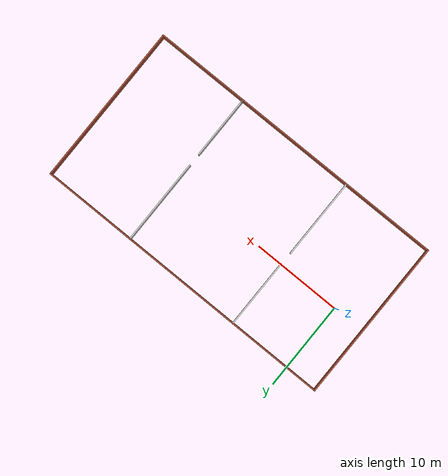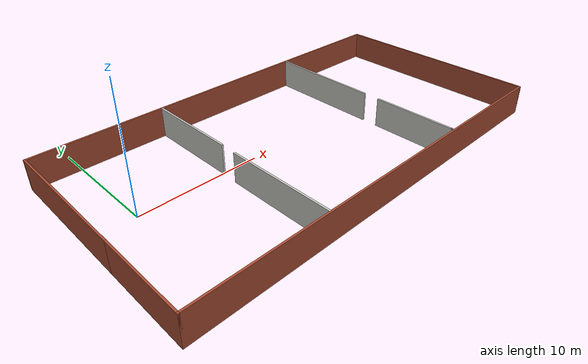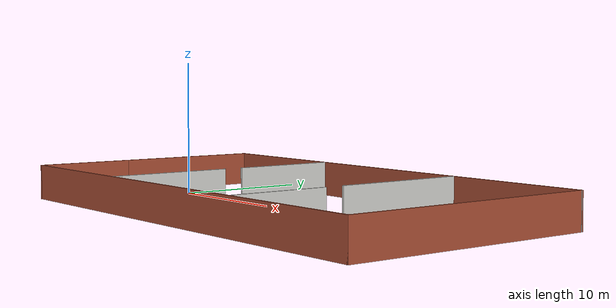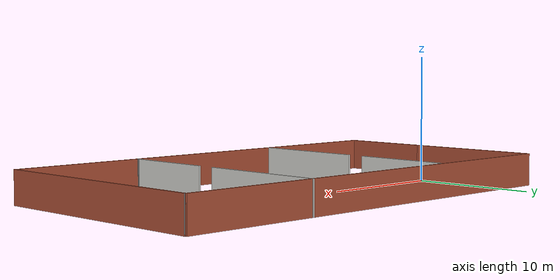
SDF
<?xml version='1.0'?>
<sdf version='1.7'>
  <model name='building_plan'>
    <pose>13.7287 -1.36309 0 0 -0 0</pose>
    <link name='Wall_1'>
      <collision name='Wall_1_Collision'>
        <geometry>
          <box>
            <size>11.25 0.15 2.5</size>
          </box>
        </geometry>
        <pose>0 0 1.25 0 -0 0</pose>
      </collision>
      <visual name='Wall_1_Visual'>
        <pose>0 0 1.25 0 -0 0</pose>
        <geometry>
          <box>
            <size>11.25 0.15 2.5</size>
          </box>
        </geometry>
        <material>
          <script>
            <uri>file://media/materials/scripts/gazebo.material</uri>
            <name>Gazebo/Bricks</name>
          </script>
          <ambient>1 1 1 1</ambient>
        </material>
        <meta>
          <layer>0</layer>
        </meta>
      </visual>
      <pose>-17.3 3.52962 0 0 -0 -1.5708</pose>
    </link>
    <link name='Wall_10'>
      <collision name='Wall_10_Collision'>
        <geometry>
          <box>
            <size>34.7503 0.15 2.5</size>
          </box>
        </geometry>
        <pose>0 0 1.25 0 -0 0</pose>
      </collision>
      <visual name='Wall_10_Visual'>
        <pose>0 0 1.25 0 -0 0</pose>
        <geometry>
          <box>
            <size>34.7503 0.15 2.5</size>
          </box>
        </geometry>
        <material>
          <script>
            <uri>file://media/materials/scripts/gazebo.material</uri>
            <name>Gazebo/Bricks</name>
          </script>
          <ambient>1 1 1 1</ambient>
        </material>
        <meta>
          <layer>0</layer>
        </meta>
      </visual>
      <pose>0 9.04985 0 0 -0 3.13753</pose>
    </link>
    <link name='Wall_12'>
      <collision name='Wall_12_Collision'>
        <geometry>
          <box>
            <size>7.75 0.15 2.5</size>
          </box>
        </geometry>
        <pose>0 0 1.25 0 -0 0</pose>
      </collision>
      <visual name='Wall_12_Visual'>
        <pose>0 0 1.25 0 -0 0</pose>
        <geometry>
          <box>
            <size>7.75 0.15 2.5</size>
          </box>
        </geometry>
        <material>
          <script>
            <uri>file://media/materials/scripts/gazebo.material</uri>
            <name>Gazebo/CeilingTiled</name>
          </script>
          <ambient>1 0.764706 0.305882 1</ambient>
        </material>
        <meta>
          <layer>0</layer>
        </meta>
      </visual>
      <pose>-6.60613 5.16103 0 0 -0 -1.5708</pose>
    </link>
    <link name='Wall_16'>
      <collision name='Wall_16_Collision'>
        <geometry>
          <box>
            <size>9 0.15 2.5</size>
          </box>
        </geometry>
        <pose>0 0 1.25 0 -0 0</pose>
      </collision>
      <visual name='Wall_16_Visual'>
        <pose>0 0 1.25 0 -0 0</pose>
        <geometry>
          <box>
            <size>9 0.15 2.5</size>
          </box>
        </geometry>
        <material>
          <script>
            <uri>file://media/materials/scripts/gazebo.material</uri>
            <name>Gazebo/CeilingTiled</name>
          </script>
          <ambient>1 0.764706 0.305882 1</ambient>
        </material>
        <meta>
          <layer>0</layer>
        </meta>
      </visual>
      <pose>-6.66648 -4.58386 0 0 -0 -1.5708</pose>
    </link>
    <link name='Wall_20'>
      <collision name='Wall_20_Collision'>
        <geometry>
          <box>
            <size>9.75 0.15 2.5</size>
          </box>
        </geometry>
        <pose>0 0 1.25 0 -0 0</pose>
      </collision>
      <visual name='Wall_20_Visual'>
        <pose>0 0 1.25 0 -0 0</pose>
        <geometry>
          <box>
            <size>9.75 0.15 2.5</size>
          </box>
        </geometry>
        <material>
          <script>
            <uri>file://media/materials/scripts/gazebo.material</uri>
            <name>Gazebo/CeilingTiled</name>
          </script>
          <ambient>0.996078 0.47451 0.0196078 1</ambient>
        </material>
        <meta>
          <layer>0</layer>
        </meta>
      </visual>
      <pose>6.88947 4.24159 0 0 -0 -1.5708</pose>
    </link>
    <link name='Wall_22'>
      <collision name='Wall_22_Collision'>
        <geometry>
          <box>
            <size>7 0.15 2.5</size>
          </box>
        </geometry>
        <pose>0 0 1.25 0 -0 0</pose>
      </collision>
      <visual name='Wall_22_Visual'>
        <pose>0 0 1.25 0 -0 0</pose>
        <geometry>
          <box>
            <size>7 0.15 2.5</size>
          </box>
        </geometry>
        <material>
          <script>
            <uri>file://media/materials/scripts/gazebo.material</uri>
            <name>Gazebo/CeilingTiled</name>
          </script>
          <ambient>0.996078 0.47451 0.0196078 1</ambient>
        </material>
        <meta>
          <layer>0</layer>
        </meta>
      </visual>
      <pose>6.88221 -5.48423 0 0 -0 -1.5708</pose>
    </link>
    <link name='Wall_23'>
      <collision name='Wall_23_Collision'>
        <geometry>
          <box>
            <size>0.25 0.15 2.5</size>
          </box>
        </geometry>
        <pose>0 0 1.25 0 -0 0</pose>
      </collision>
      <visual name='Wall_23_Visual'>
        <pose>0 0 1.25 0 -0 0</pose>
        <geometry>
          <box>
            <size>0.25 0.15 2.5</size>
          </box>
        </geometry>
        <material>
          <script>
            <uri>file://media/materials/scripts/gazebo.material</uri>
            <name>Gazebo/Grey</name>
          </script>
          <ambient>1 1 1 1</ambient>
        </material>
        <meta>
          <layer>0</layer>
        </meta>
      </visual>
      <pose>6.86927 -8.95752 0 0 -0 -1.8326</pose>
    </link>
    <link name='Wall_24'>
      <collision name='Wall_24_Collision'>
        <geometry>
          <box>
            <size>0.25 0.15 2.5</size>
          </box>
        </geometry>
        <pose>0 0 1.25 0 -0 0</pose>
      </collision>
      <visual name='Wall_24_Visual'>
        <pose>0 0 1.25 0 -0 0</pose>
        <geometry>
          <box>
            <size>0.25 0.15 2.5</size>
          </box>
        </geometry>
        <material>
          <script>
            <uri>file://media/materials/scripts/gazebo.material</uri>
            <name>Gazebo/Grey</name>
          </script>
          <ambient>1 1 1 1</ambient>
        </material>
        <meta>
          <layer>0</layer>
        </meta>
      </visual>
      <pose>6.86927 -8.95752 0 0 -0 1.309</pose>
    </link>
    <link name='Wall_5'>
      <collision name='Wall_5_Collision'>
        <geometry>
          <box>
            <size>7.29046 0.15 2.5</size>
          </box>
        </geometry>
        <pose>0 0 1.25 0 -0 0</pose>
      </collision>
      <visual name='Wall_5_Visual'>
        <pose>0 0 1.25 0 -0 0</pose>
        <geometry>
          <box>
            <size>7.29046 0.15 2.5</size>
          </box>
        </geometry>
        <material>
          <script>
            <uri>file://media/materials/scripts/gazebo.material</uri>
            <name>Gazebo/Bricks</name>
          </script>
          <ambient>1 1 1 1</ambient>
        </material>
        <meta>
          <layer>0</layer>
        </meta>
      </visual>
      <pose>-17.3 -5.55015 0 0 -0 -1.5708</pose>
    </link>
    <link name='Wall_6'>
      <collision name='Wall_6_Collision'>
        <geometry>
          <box>
            <size>34.75 0.15 2.5</size>
          </box>
        </geometry>
        <pose>0 0 1.25 0 -0 0</pose>
      </collision>
      <visual name='Wall_6_Visual'>
        <pose>0 0 1.25 0 -0 0</pose>
        <geometry>
          <box>
            <size>34.75 0.15 2.5</size>
          </box>
        </geometry>
        <material>
          <script>
            <uri>file://media/materials/scripts/gazebo.material</uri>
            <name>Gazebo/Bricks</name>
          </script>
          <ambient>1 1 1 1</ambient>
        </material>
        <meta>
          <layer>0</layer>
        </meta>
      </visual>
      <pose>0 -9.12038 0 0 -0 0</pose>
    </link>
    <link name='Wall_8'>
      <collision name='Wall_8_Collision'>
        <geometry>
          <box>
            <size>18.25 0.15 2.5</size>
          </box>
        </geometry>
        <pose>0 0 1.25 0 -0 0</pose>
      </collision>
      <visual name='Wall_8_Visual'>
        <pose>0 0 1.25 0 -0 0</pose>
        <geometry>
          <box>
            <size>18.25 0.15 2.5</size>
          </box>
        </geometry>
        <material>
          <script>
            <uri>file://media/materials/scripts/gazebo.material</uri>
            <name>Gazebo/Bricks</name>
          </script>
          <ambient>1 1 1 1</ambient>
        </material>
        <meta>
          <layer>0</layer>
        </meta>
      </visual>
      <pose>17.3 -0.070379 0 0 -0 1.5708</pose>
    </link>
    <link name='Wall_9'>
      <collision name='Wall_9_Collision'>
        <geometry>
          <box>
            <size>0.15 0.15 2.5</size>
          </box>
        </geometry>
        <pose>0 0 1.25 0 -0 0</pose>
      </collision>
      <visual name='Wall_9_Visual'>
        <pose>0 0 1.25 0 -0 0</pose>
        <geometry>
          <box>
            <size>0.15 0.15 2.5</size>
          </box>
        </geometry>
        <material>
          <script>
            <uri>file://media/materials/scripts/gazebo.material</uri>
            <name>Gazebo/Grey</name>
          </script>
          <ambient>1 1 1 1</ambient>
        </material>
        <meta>
          <layer>0</layer>
        </meta>
      </visual>
      <pose>17.3 8.97962 0 0 -0 0</pose>
    </link>
    <static>1</static>
  </model>
</sdf>
